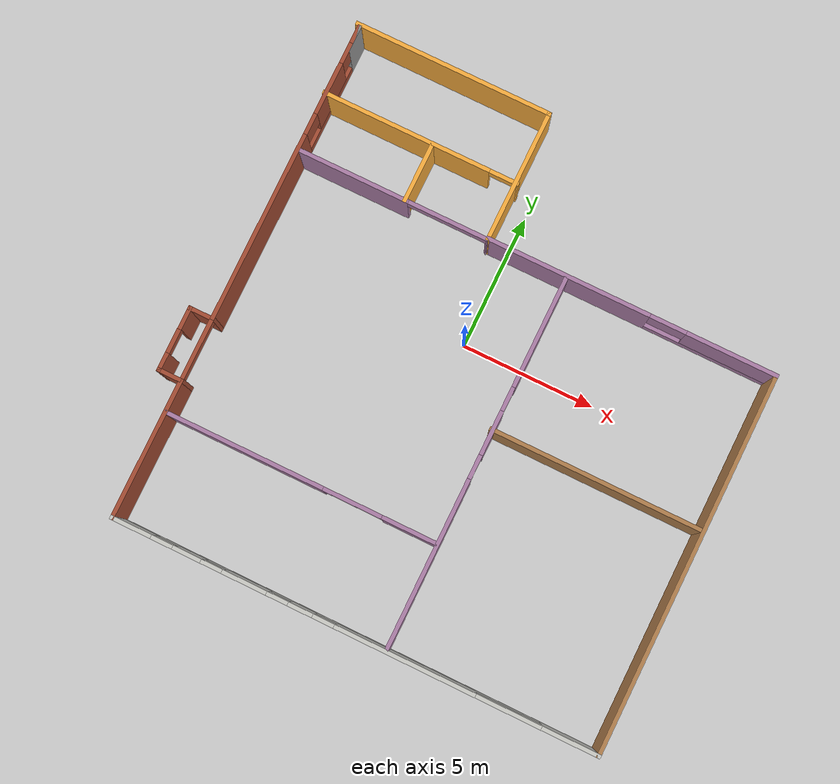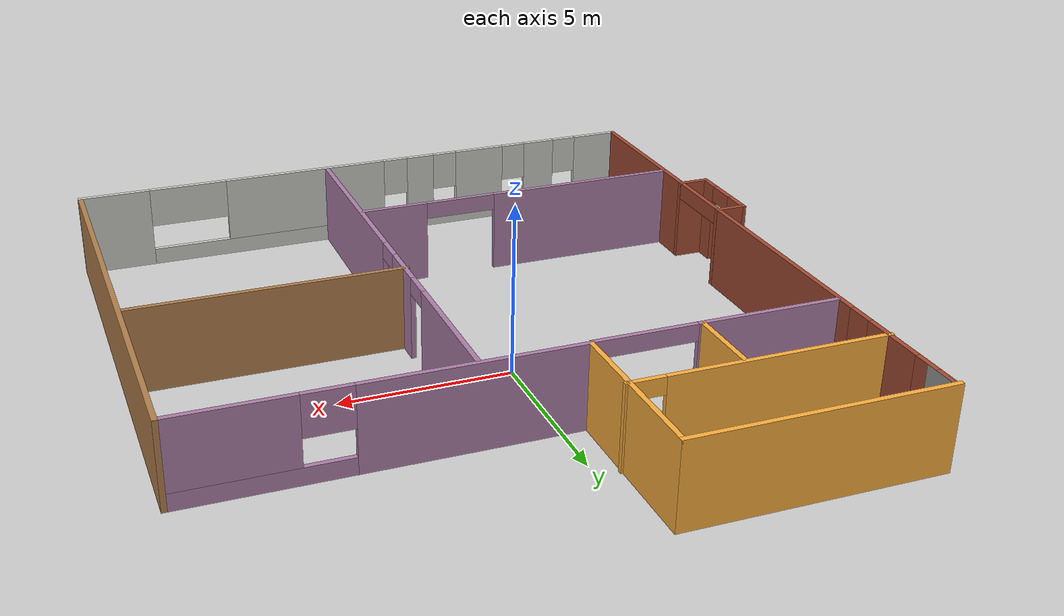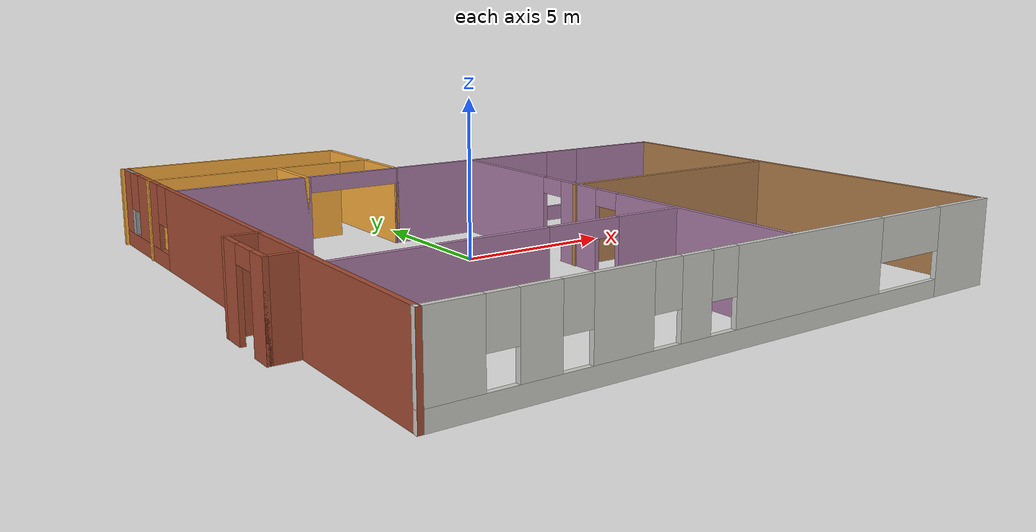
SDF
<?xml version='1.0'?>
<sdf version='1.6'>
  <model name='apartment-structure'>
    <pose frame=''>0.643733 -1.23785 0 0 -0 0</pose>
    <link name='Wall_14'>
      <collision name='Wall_14_Collision'>
        <geometry>
          <box>
            <size>7.5 0.15 2.5</size>
          </box>
        </geometry>
        <pose frame=''>0 0 1.25 0 -0 0</pose>
      </collision>
      <visual name='Wall_14_Visual'>
        <pose frame=''>0 0 1.25 0 -0 0</pose>
        <geometry>
          <box>
            <size>7.5 0.15 2.5</size>
          </box>
        </geometry>
        <material>
          <script>
            <uri>file://media/materials/scripts/gazebo.material</uri>
            <name>Gazebo/Grey</name>
          </script>
          <ambient>0.988235 0.686275 0.243137 1</ambient>
        </material>
        <meta>
          <layer>0</layer>
        </meta>
      </visual>
      <pose frame=''>-5.05241 9.475 0 0 -0 0</pose>
    </link>
    <link name='Wall_15'>
      <collision name='Wall_15_Collision'>
        <geometry>
          <box>
            <size>5 0.15 2.5</size>
          </box>
        </geometry>
        <pose frame=''>0 0 1.25 0 -0 0</pose>
      </collision>
      <visual name='Wall_15_Visual'>
        <pose frame=''>0 0 1.25 0 -0 0</pose>
        <geometry>
          <box>
            <size>5 0.15 2.5</size>
          </box>
        </geometry>
        <material>
          <script>
            <uri>file://media/materials/scripts/gazebo.material</uri>
            <name>Gazebo/Grey</name>
          </script>
          <ambient>0.988235 0.686275 0.243137 1</ambient>
        </material>
        <meta>
          <layer>0</layer>
        </meta>
      </visual>
      <pose frame=''>-1.37741 7.05 0 0 -0 -1.5708</pose>
    </link>
    <link name='Wall_16'>
      <pose frame=''>4.0476 4.625 0 0 -0 0</pose>
      <visual name='Wall_16_Visual_0'>
        <pose frame=''>-2.39955 0 1.25 0 -0 0</pose>
        <geometry>
          <box>
            <size>6.20089 0.15 2.5</size>
          </box>
        </geometry>
        <material>
          <script>
            <uri>file://media/materials/scripts/gazebo.material</uri>
            <name>Gazebo/Grey</name>
          </script>
          <ambient>0.678431 0.498039 0.658824 1</ambient>
        </material>
        <meta>
          <layer>0</layer>
        </meta>
      </visual>
      <collision name='Wall_16_Collision_0'>
        <geometry>
          <box>
            <size>6.20089 0.15 2.5</size>
          </box>
        </geometry>
        <pose frame=''>-2.39955 0 1.25 0 -0 0</pose>
      </collision>
      <visual name='Wall_16_Visual_1'>
        <pose frame=''>3.10045 0 0.25 0 -0 0</pose>
        <geometry>
          <box>
            <size>4.79911 0.15 0.5</size>
          </box>
        </geometry>
        <material>
          <script>
            <uri>file://media/materials/scripts/gazebo.material</uri>
            <name>Gazebo/Grey</name>
          </script>
          <ambient>0.678431 0.498039 0.658824 1</ambient>
        </material>
        <meta>
          <layer>0</layer>
        </meta>
      </visual>
      <collision name='Wall_16_Collision_1'>
        <geometry>
          <box>
            <size>4.79911 0.15 0.5</size>
          </box>
        </geometry>
        <pose frame=''>3.10045 0 0.25 0 -0 0</pose>
      </collision>
      <visual name='Wall_16_Visual_2'>
        <pose frame=''>3.77959 0 1.5 0 -0 0</pose>
        <geometry>
          <box>
            <size>3.44082 0.15 2</size>
          </box>
        </geometry>
        <material>
          <script>
            <uri>file://media/materials/scripts/gazebo.material</uri>
            <name>Gazebo/Grey</name>
          </script>
          <ambient>0.678431 0.498039 0.658824 1</ambient>
        </material>
        <meta>
          <layer>0</layer>
        </meta>
      </visual>
      <collision name='Wall_16_Collision_2'>
        <geometry>
          <box>
            <size>3.44082 0.15 2</size>
          </box>
        </geometry>
        <pose frame=''>3.77959 0 1.5 0 -0 0</pose>
      </collision>
      <visual name='Wall_16_Visual_3'>
        <pose frame=''>1.38003 0 1.9 0 -0 0</pose>
        <geometry>
          <box>
            <size>1.35829 0.15 1.2</size>
          </box>
        </geometry>
        <material>
          <script>
            <uri>file://media/materials/scripts/gazebo.material</uri>
            <name>Gazebo/Grey</name>
          </script>
          <ambient>0.678431 0.498039 0.658824 1</ambient>
        </material>
        <meta>
          <layer>0</layer>
        </meta>
      </visual>
      <collision name='Wall_16_Collision_3'>
        <geometry>
          <box>
            <size>1.35829 0.15 1.2</size>
          </box>
        </geometry>
        <pose frame=''>1.38003 0 1.9 0 -0 0</pose>
      </collision>
    </link>
    <link name='Wall_18'>
      <collision name='Wall_18_Collision'>
        <geometry>
          <box>
            <size>14.25 0.15 2.5</size>
          </box>
        </geometry>
        <pose frame=''>0 0 1.25 0 -0 0</pose>
      </collision>
      <visual name='Wall_18_Visual'>
        <pose frame=''>0 0 1.25 0 -0 0</pose>
        <geometry>
          <box>
            <size>14.25 0.15 2.5</size>
          </box>
        </geometry>
        <material>
          <script>
            <uri>file://media/materials/scripts/gazebo.material</uri>
            <name>Gazebo/Wood</name>
          </script>
          <ambient>1 1 1 1</ambient>
        </material>
        <meta>
          <layer>0</layer>
        </meta>
      </visual>
      <pose frame=''>9.47259 -2.425 0 0 -0 -1.5708</pose>
    </link>
    <link name='Wall_19'>
      <pose frame=''>0.422594 -9.475 0 0 -0 3.14159</pose>
      <visual name='Wall_19_Visual_0'>
        <pose frame=''>-8.03266 0 1.25 0 -0 0</pose>
        <geometry>
          <box>
            <size>2.18468 0.15 2.5</size>
          </box>
        </geometry>
        <material>
          <script>
            <uri>file://media/materials/scripts/gazebo.material</uri>
            <name>Gazebo/CeilingTiled</name>
          </script>
          <ambient>1 1 1 1</ambient>
        </material>
        <meta>
          <layer>0</layer>
        </meta>
      </visual>
      <collision name='Wall_19_Collision_0'>
        <geometry>
          <box>
            <size>2.18468 0.15 2.5</size>
          </box>
        </geometry>
        <pose frame=''>-8.03266 0 1.25 0 -0 0</pose>
      </collision>
      <visual name='Wall_19_Visual_1'>
        <pose frame=''>1.09234 0 0.25 0 -0 0</pose>
        <geometry>
          <box>
            <size>16.0653 0.15 0.5</size>
          </box>
        </geometry>
        <material>
          <script>
            <uri>file://media/materials/scripts/gazebo.material</uri>
            <name>Gazebo/CeilingTiled</name>
          </script>
          <ambient>1 1 1 1</ambient>
        </material>
        <meta>
          <layer>0</layer>
        </meta>
      </visual>
      <collision name='Wall_19_Collision_1'>
        <geometry>
          <box>
            <size>16.0653 0.15 0.5</size>
          </box>
        </geometry>
        <pose frame=''>1.09234 0 0.25 0 -0 0</pose>
      </collision>
      <visual name='Wall_19_Visual_2'>
        <pose frame=''>-1.88793 0 1.5 0 -0 0</pose>
        <geometry>
          <box>
            <size>5.24811 0.15 2</size>
          </box>
        </geometry>
        <material>
          <script>
            <uri>file://media/materials/scripts/gazebo.material</uri>
            <name>Gazebo/CeilingTiled</name>
          </script>
          <ambient>1 1 1 1</ambient>
        </material>
        <meta>
          <layer>0</layer>
        </meta>
      </visual>
      <collision name='Wall_19_Collision_2'>
        <geometry>
          <box>
            <size>5.24811 0.15 2</size>
          </box>
        </geometry>
        <pose frame=''>-1.88793 0 1.5 0 -0 0</pose>
      </collision>
      <visual name='Wall_19_Visual_3'>
        <pose frame=''>1.99682 0 1.5 0 -0 0</pose>
        <geometry>
          <box>
            <size>0.921385 0.15 2</size>
          </box>
        </geometry>
        <material>
          <script>
            <uri>file://media/materials/scripts/gazebo.material</uri>
            <name>Gazebo/CeilingTiled</name>
          </script>
          <ambient>1 1 1 1</ambient>
        </material>
        <meta>
          <layer>0</layer>
        </meta>
      </visual>
      <collision name='Wall_19_Collision_3'>
        <geometry>
          <box>
            <size>0.921385 0.15 2</size>
          </box>
        </geometry>
        <pose frame=''>1.99682 0 1.5 0 -0 0</pose>
      </collision>
      <visual name='Wall_19_Visual_4'>
        <pose frame=''>4.09039 0 1.5 0 -0 0</pose>
        <geometry>
          <box>
            <size>1.66577 0.15 2</size>
          </box>
        </geometry>
        <material>
          <script>
            <uri>file://media/materials/scripts/gazebo.material</uri>
            <name>Gazebo/CeilingTiled</name>
          </script>
          <ambient>1 1 1 1</ambient>
        </material>
        <meta>
          <layer>0</layer>
        </meta>
      </visual>
      <collision name='Wall_19_Collision_4'>
        <geometry>
          <box>
            <size>1.66577 0.15 2</size>
          </box>
        </geometry>
        <pose frame=''>4.09039 0 1.5 0 -0 0</pose>
      </collision>
      <visual name='Wall_19_Visual_5'>
        <pose frame=''>6.25375 0 1.5 0 -0 0</pose>
        <geometry>
          <box>
            <size>1.06096 0.15 2</size>
          </box>
        </geometry>
        <material>
          <script>
            <uri>file://media/materials/scripts/gazebo.material</uri>
            <name>Gazebo/CeilingTiled</name>
          </script>
          <ambient>1 1 1 1</ambient>
        </material>
        <meta>
          <layer>0</layer>
        </meta>
      </visual>
      <collision name='Wall_19_Collision_5'>
        <geometry>
          <box>
            <size>1.06096 0.15 2</size>
          </box>
        </geometry>
        <pose frame=''>6.25375 0 1.5 0 -0 0</pose>
      </collision>
      <visual name='Wall_19_Visual_6'>
        <pose frame=''>8.35462 0 1.5 0 -0 0</pose>
        <geometry>
          <box>
            <size>1.54077 0.15 2</size>
          </box>
        </geometry>
        <material>
          <script>
            <uri>file://media/materials/scripts/gazebo.material</uri>
            <name>Gazebo/CeilingTiled</name>
          </script>
          <ambient>1 1 1 1</ambient>
        </material>
        <meta>
          <layer>0</layer>
        </meta>
      </visual>
      <collision name='Wall_19_Collision_6'>
        <geometry>
          <box>
            <size>1.54077 0.15 2</size>
          </box>
        </geometry>
        <pose frame=''>8.35462 0 1.5 0 -0 0</pose>
      </collision>
      <visual name='Wall_19_Visual_7'>
        <pose frame=''>-5.72615 0 1.9 0 -0 0</pose>
        <geometry>
          <box>
            <size>2.42834 0.15 1.2</size>
          </box>
        </geometry>
        <material>
          <script>
            <uri>file://media/materials/scripts/gazebo.material</uri>
            <name>Gazebo/CeilingTiled</name>
          </script>
          <ambient>1 1 1 1</ambient>
        </material>
        <meta>
          <layer>0</layer>
        </meta>
      </visual>
      <collision name='Wall_19_Collision_7'>
        <geometry>
          <box>
            <size>2.42834 0.15 1.2</size>
          </box>
        </geometry>
        <pose frame=''>-5.72615 0 1.9 0 -0 0</pose>
      </collision>
      <visual name='Wall_19_Visual_8'>
        <pose frame=''>1.13612 0 1.9 0 -0 0</pose>
        <geometry>
          <box>
            <size>0.8 0.15 1.2</size>
          </box>
        </geometry>
        <material>
          <script>
            <uri>file://media/materials/scripts/gazebo.material</uri>
            <name>Gazebo/CeilingTiled</name>
          </script>
          <ambient>1 1 1 1</ambient>
        </material>
        <meta>
          <layer>0</layer>
        </meta>
      </visual>
      <collision name='Wall_19_Collision_8'>
        <geometry>
          <box>
            <size>0.8 0.15 1.2</size>
          </box>
        </geometry>
        <pose frame=''>1.13612 0 1.9 0 -0 0</pose>
      </collision>
      <visual name='Wall_19_Visual_9'>
        <pose frame=''>2.85751 0 1.9 0 -0 0</pose>
        <geometry>
          <box>
            <size>0.8 0.15 1.2</size>
          </box>
        </geometry>
        <material>
          <script>
            <uri>file://media/materials/scripts/gazebo.material</uri>
            <name>Gazebo/CeilingTiled</name>
          </script>
          <ambient>1 1 1 1</ambient>
        </material>
        <meta>
          <layer>0</layer>
        </meta>
      </visual>
      <collision name='Wall_19_Collision_9'>
        <geometry>
          <box>
            <size>0.8 0.15 1.2</size>
          </box>
        </geometry>
        <pose frame=''>2.85751 0 1.9 0 -0 0</pose>
      </collision>
      <visual name='Wall_19_Visual_10'>
        <pose frame=''>5.32328 0 1.9 0 -0 0</pose>
        <geometry>
          <box>
            <size>0.8 0.15 1.2</size>
          </box>
        </geometry>
        <material>
          <script>
            <uri>file://media/materials/scripts/gazebo.material</uri>
            <name>Gazebo/CeilingTiled</name>
          </script>
          <ambient>1 1 1 1</ambient>
        </material>
        <meta>
          <layer>0</layer>
        </meta>
      </visual>
      <collision name='Wall_19_Collision_10'>
        <geometry>
          <box>
            <size>0.8 0.15 1.2</size>
          </box>
        </geometry>
        <pose frame=''>5.32328 0 1.9 0 -0 0</pose>
      </collision>
      <visual name='Wall_19_Visual_11'>
        <pose frame=''>7.18423 0 1.9 0 -0 0</pose>
        <geometry>
          <box>
            <size>0.8 0.15 1.2</size>
          </box>
        </geometry>
        <material>
          <script>
            <uri>file://media/materials/scripts/gazebo.material</uri>
            <name>Gazebo/CeilingTiled</name>
          </script>
          <ambient>1 1 1 1</ambient>
        </material>
        <meta>
          <layer>0</layer>
        </meta>
      </visual>
      <collision name='Wall_19_Collision_11'>
        <geometry>
          <box>
            <size>0.8 0.15 1.2</size>
          </box>
        </geometry>
        <pose frame=''>7.18423 0 1.9 0 -0 0</pose>
      </collision>
    </link>
    <link name='Wall_20'>
      <pose frame=''>-8.62741 -0.049999 0 0 -0 1.5708</pose>
      <visual name='Wall_20_Visual_0'>
        <pose frame=''>-6.85379 0 1.25 0 -0 0</pose>
        <geometry>
          <box>
            <size>5.29242 0.15 2.5</size>
          </box>
        </geometry>
        <material>
          <script>
            <uri>file://media/materials/scripts/gazebo.material</uri>
            <name>Gazebo/Bricks</name>
          </script>
          <ambient>0.678431 0.498039 0.658824 1</ambient>
        </material>
        <meta>
          <layer>0</layer>
        </meta>
      </visual>
      <collision name='Wall_20_Collision_0'>
        <geometry>
          <box>
            <size>5.29242 0.15 2.5</size>
          </box>
        </geometry>
        <pose frame=''>-6.85379 0 1.25 0 -0 0</pose>
      </collision>
      <visual name='Wall_20_Visual_1'>
        <pose frame=''>1.6293 0 1.25 0 -0 0</pose>
        <geometry>
          <box>
            <size>7.17537 0.15 2.5</size>
          </box>
        </geometry>
        <material>
          <script>
            <uri>file://media/materials/scripts/gazebo.material</uri>
            <name>Gazebo/Bricks</name>
          </script>
          <ambient>0.678431 0.498039 0.658824 1</ambient>
        </material>
        <meta>
          <layer>0</layer>
        </meta>
      </visual>
      <collision name='Wall_20_Collision_1'>
        <geometry>
          <box>
            <size>7.17537 0.15 2.5</size>
          </box>
        </geometry>
        <pose frame=''>1.6293 0 1.25 0 -0 0</pose>
      </collision>
      <visual name='Wall_20_Visual_2'>
        <pose frame=''>7.3585 0 0.25 0 -0 0</pose>
        <geometry>
          <box>
            <size>4.28301 0.15 0.5</size>
          </box>
        </geometry>
        <material>
          <script>
            <uri>file://media/materials/scripts/gazebo.material</uri>
            <name>Gazebo/Bricks</name>
          </script>
          <ambient>0.678431 0.498039 0.658824 1</ambient>
        </material>
        <meta>
          <layer>0</layer>
        </meta>
      </visual>
      <collision name='Wall_20_Collision_2'>
        <geometry>
          <box>
            <size>4.28301 0.15 0.5</size>
          </box>
        </geometry>
        <pose frame=''>7.3585 0 0.25 0 -0 0</pose>
      </collision>
      <visual name='Wall_20_Visual_3'>
        <pose frame=''>7.01271 0 1.5 0 -0 0</pose>
        <geometry>
          <box>
            <size>1.99144 0.15 2</size>
          </box>
        </geometry>
        <material>
          <script>
            <uri>file://media/materials/scripts/gazebo.material</uri>
            <name>Gazebo/Bricks</name>
          </script>
          <ambient>0.678431 0.498039 0.658824 1</ambient>
        </material>
        <meta>
          <layer>0</layer>
        </meta>
      </visual>
      <collision name='Wall_20_Collision_3'>
        <geometry>
          <box>
            <size>1.99144 0.15 2</size>
          </box>
        </geometry>
        <pose frame=''>7.01271 0 1.5 0 -0 0</pose>
      </collision>
      <visual name='Wall_20_Visual_4'>
        <pose frame=''>9.15421 0 1.5 0 -0 0</pose>
        <geometry>
          <box>
            <size>0.691574 0.15 2</size>
          </box>
        </geometry>
        <material>
          <script>
            <uri>file://media/materials/scripts/gazebo.material</uri>
            <name>Gazebo/Bricks</name>
          </script>
          <ambient>0.678431 0.498039 0.658824 1</ambient>
        </material>
        <meta>
          <layer>0</layer>
        </meta>
      </visual>
      <collision name='Wall_20_Collision_4'>
        <geometry>
          <box>
            <size>0.691574 0.15 2</size>
          </box>
        </geometry>
        <pose frame=''>9.15421 0 1.5 0 -0 0</pose>
      </collision>
      <visual name='Wall_20_Visual_5'>
        <pose frame=''>5.61699 0 1.9 0 -0 0</pose>
        <geometry>
          <box>
            <size>0.8 0.15 1.2</size>
          </box>
        </geometry>
        <material>
          <script>
            <uri>file://media/materials/scripts/gazebo.material</uri>
            <name>Gazebo/Bricks</name>
          </script>
          <ambient>0.678431 0.498039 0.658824 1</ambient>
        </material>
        <meta>
          <layer>0</layer>
        </meta>
      </visual>
      <collision name='Wall_20_Collision_5'>
        <geometry>
          <box>
            <size>0.8 0.15 1.2</size>
          </box>
        </geometry>
        <pose frame=''>5.61699 0 1.9 0 -0 0</pose>
      </collision>
      <visual name='Wall_20_Visual_6'>
        <pose frame=''>8.40843 0 1.9 0 -0 0</pose>
        <geometry>
          <box>
            <size>0.8 0.15 1.2</size>
          </box>
        </geometry>
        <material>
          <script>
            <uri>file://media/materials/scripts/gazebo.material</uri>
            <name>Gazebo/Bricks</name>
          </script>
          <ambient>0.678431 0.498039 0.658824 1</ambient>
        </material>
        <meta>
          <layer>0</layer>
        </meta>
      </visual>
      <collision name='Wall_20_Collision_6'>
        <geometry>
          <box>
            <size>0.8 0.15 1.2</size>
          </box>
        </geometry>
        <pose frame=''>8.40843 0 1.9 0 -0 0</pose>
      </collision>
      <visual name='Wall_20_Visual_7'>
        <pose frame=''>-3.08298 0 2.25 0 -0 0</pose>
        <geometry>
          <box>
            <size>2.24919 0.15 0.5</size>
          </box>
        </geometry>
        <material>
          <script>
            <uri>file://media/materials/scripts/gazebo.material</uri>
            <name>Gazebo/Bricks</name>
          </script>
          <ambient>0.678431 0.498039 0.658824 1</ambient>
        </material>
        <meta>
          <layer>0</layer>
        </meta>
      </visual>
      <collision name='Wall_20_Collision_7'>
        <geometry>
          <box>
            <size>2.24919 0.15 0.5</size>
          </box>
        </geometry>
        <pose frame=''>-3.08298 0 2.25 0 -0 0</pose>
      </collision>
    </link>
    <link name='Wall_21'>
      <collision name='Wall_21_Collision'>
        <geometry>
          <box>
            <size>1 0.15 2.5</size>
          </box>
        </geometry>
        <pose frame=''>0 0 1.25 0 -0 0</pose>
      </collision>
      <visual name='Wall_21_Visual'>
        <pose frame=''>0 0 1.25 0 -0 0</pose>
        <geometry>
          <box>
            <size>1 0.15 2.5</size>
          </box>
        </geometry>
        <material>
          <script>
            <uri>file://media/materials/scripts/gazebo.material</uri>
            <name>Gazebo/Grey</name>
          </script>
          <ambient>1 1 1 1</ambient>
        </material>
        <meta>
          <layer>0</layer>
        </meta>
      </visual>
      <pose frame=''>-8.62741 8.95 0 0 -0 -1.5708</pose>
    </link>
    <link name='Wall_23'>
      <pose frame=''>-4.99412 6.77661 0 0 -0 0</pose>
      <visual name='Wall_23_Visual_0'>
        <pose frame=''>-0.552885 0 1.25 0 -0 0</pose>
        <geometry>
          <box>
            <size>6.39423 0.15 2.5</size>
          </box>
        </geometry>
        <material>
          <script>
            <uri>file://media/materials/scripts/gazebo.material</uri>
            <name>Gazebo/Grey</name>
          </script>
          <ambient>0.988235 0.686275 0.243137 1</ambient>
        </material>
        <meta>
          <layer>0</layer>
        </meta>
      </visual>
      <collision name='Wall_23_Collision_0'>
        <geometry>
          <box>
            <size>6.39423 0.15 2.5</size>
          </box>
        </geometry>
        <pose frame=''>-0.552885 0 1.25 0 -0 0</pose>
      </collision>
      <visual name='Wall_23_Visual_1'>
        <pose frame=''>3.69364 0 1.25 0 -0 0</pose>
        <geometry>
          <box>
            <size>0.112723 0.15 2.5</size>
          </box>
        </geometry>
        <material>
          <script>
            <uri>file://media/materials/scripts/gazebo.material</uri>
            <name>Gazebo/Grey</name>
          </script>
          <ambient>0.988235 0.686275 0.243137 1</ambient>
        </material>
        <meta>
          <layer>0</layer>
        </meta>
      </visual>
      <collision name='Wall_23_Collision_1'>
        <geometry>
          <box>
            <size>0.112723 0.15 2.5</size>
          </box>
        </geometry>
        <pose frame=''>3.69364 0 1.25 0 -0 0</pose>
      </collision>
      <visual name='Wall_23_Visual_2'>
        <pose frame=''>3.14075 0 2.25 0 -0 0</pose>
        <geometry>
          <box>
            <size>0.993048 0.15 0.5</size>
          </box>
        </geometry>
        <material>
          <script>
            <uri>file://media/materials/scripts/gazebo.material</uri>
            <name>Gazebo/Grey</name>
          </script>
          <ambient>0.988235 0.686275 0.243137 1</ambient>
        </material>
        <meta>
          <layer>0</layer>
        </meta>
      </visual>
      <collision name='Wall_23_Collision_2'>
        <geometry>
          <box>
            <size>0.993048 0.15 0.5</size>
          </box>
        </geometry>
        <pose frame=''>3.14075 0 2.25 0 -0 0</pose>
      </collision>
    </link>
    <link name='Wall_26'>
      <pose frame=''>-4.98544 4.58357 0 0 -0 3.14159</pose>
      <visual name='Wall_26_Visual_0'>
        <pose frame=''>-3.60354 0 1.25 0 -0 0</pose>
        <geometry>
          <box>
            <size>0.042923 0.15 2.5</size>
          </box>
        </geometry>
        <material>
          <script>
            <uri>file://media/materials/scripts/gazebo.material</uri>
            <name>Gazebo/Grey</name>
          </script>
          <ambient>0.678431 0.498039 0.658824 1</ambient>
        </material>
        <meta>
          <layer>0</layer>
        </meta>
      </visual>
      <collision name='Wall_26_Collision_0'>
        <geometry>
          <box>
            <size>0.042923 0.15 2.5</size>
          </box>
        </geometry>
        <pose frame=''>-3.60354 0 1.25 0 -0 0</pose>
      </collision>
      <visual name='Wall_26_Visual_1'>
        <pose frame=''>1.51825 0 1.25 0 -0 0</pose>
        <geometry>
          <box>
            <size>4.2135 0.15 2.5</size>
          </box>
        </geometry>
        <material>
          <script>
            <uri>file://media/materials/scripts/gazebo.material</uri>
            <name>Gazebo/Grey</name>
          </script>
          <ambient>0.678431 0.498039 0.658824 1</ambient>
        </material>
        <meta>
          <layer>0</layer>
        </meta>
      </visual>
      <collision name='Wall_26_Collision_1'>
        <geometry>
          <box>
            <size>4.2135 0.15 2.5</size>
          </box>
        </geometry>
        <pose frame=''>1.51825 0 1.25 0 -0 0</pose>
      </collision>
      <visual name='Wall_26_Visual_2'>
        <pose frame=''>-2.08529 0 2.25 0 -0 0</pose>
        <geometry>
          <box>
            <size>2.99358 0.15 0.5</size>
          </box>
        </geometry>
        <material>
          <script>
            <uri>file://media/materials/scripts/gazebo.material</uri>
            <name>Gazebo/Grey</name>
          </script>
          <ambient>0.678431 0.498039 0.658824 1</ambient>
        </material>
        <meta>
          <layer>0</layer>
        </meta>
      </visual>
      <collision name='Wall_26_Collision_2'>
        <geometry>
          <box>
            <size>2.99358 0.15 0.5</size>
          </box>
        </geometry>
        <pose frame=''>-2.08529 0 2.25 0 -0 0</pose>
      </collision>
    </link>
    <link name='Wall_28'>
      <collision name='Wall_28_Collision'>
        <geometry>
          <box>
            <size>2.25 0.15 2.5</size>
          </box>
        </geometry>
        <pose frame=''>0 0 1.25 0 -0 0</pose>
      </collision>
      <visual name='Wall_28_Visual'>
        <pose frame=''>0 0 1.25 0 -0 0</pose>
        <geometry>
          <box>
            <size>2.25 0.15 2.5</size>
          </box>
        </geometry>
        <material>
          <script>
            <uri>file://media/materials/scripts/gazebo.material</uri>
            <name>Gazebo/Grey</name>
          </script>
          <ambient>0.988235 0.686275 0.243137 1</ambient>
        </material>
        <meta>
          <layer>0</layer>
        </meta>
      </visual>
      <pose frame=''>-4.52849 5.63357 0 0 -0 -1.5708</pose>
    </link>
    <link name='Wall_30'>
      <pose frame=''>1.61267 -2.42806 0 0 -0 -1.5708</pose>
      <visual name='Wall_30_Visual_0'>
        <pose frame=''>-4.90783 0 1.25 0 -0 0</pose>
        <geometry>
          <box>
            <size>4.18434 0.15 2.5</size>
          </box>
        </geometry>
        <material>
          <script>
            <uri>file://media/materials/scripts/gazebo.material</uri>
            <name>Gazebo/Grey</name>
          </script>
          <ambient>0.678431 0.498039 0.658824 1</ambient>
        </material>
        <meta>
          <layer>0</layer>
        </meta>
      </visual>
      <collision name='Wall_30_Collision_0'>
        <geometry>
          <box>
            <size>4.18434 0.15 2.5</size>
          </box>
        </geometry>
        <pose frame=''>-4.90783 0 1.25 0 -0 0</pose>
      </collision>
      <visual name='Wall_30_Visual_1'>
        <pose frame=''>-1.08625 0 1.25 0 -0 0</pose>
        <geometry>
          <box>
            <size>1.65881 0.15 2.5</size>
          </box>
        </geometry>
        <material>
          <script>
            <uri>file://media/materials/scripts/gazebo.material</uri>
            <name>Gazebo/Grey</name>
          </script>
          <ambient>0.678431 0.498039 0.658824 1</ambient>
        </material>
        <meta>
          <layer>0</layer>
        </meta>
      </visual>
      <collision name='Wall_30_Collision_1'>
        <geometry>
          <box>
            <size>1.65881 0.15 2.5</size>
          </box>
        </geometry>
        <pose frame=''>-1.08625 0 1.25 0 -0 0</pose>
      </collision>
      <visual name='Wall_30_Visual_2'>
        <pose frame=''>3.82158 0 1.25 0 -0 0</pose>
        <geometry>
          <box>
            <size>6.35684 0.15 2.5</size>
          </box>
        </geometry>
        <material>
          <script>
            <uri>file://media/materials/scripts/gazebo.material</uri>
            <name>Gazebo/Grey</name>
          </script>
          <ambient>0.678431 0.498039 0.658824 1</ambient>
        </material>
        <meta>
          <layer>0</layer>
        </meta>
      </visual>
      <collision name='Wall_30_Collision_2'>
        <geometry>
          <box>
            <size>6.35684 0.15 2.5</size>
          </box>
        </geometry>
        <pose frame=''>3.82158 0 1.25 0 -0 0</pose>
      </collision>
      <visual name='Wall_30_Visual_3'>
        <pose frame=''>-2.36566 0 2.25 0 -0 0</pose>
        <geometry>
          <box>
            <size>0.9 0.15 0.5</size>
          </box>
        </geometry>
        <material>
          <script>
            <uri>file://media/materials/scripts/gazebo.material</uri>
            <name>Gazebo/Grey</name>
          </script>
          <ambient>0.678431 0.498039 0.658824 1</ambient>
        </material>
        <meta>
          <layer>0</layer>
        </meta>
      </visual>
      <collision name='Wall_30_Collision_3'>
        <geometry>
          <box>
            <size>0.9 0.15 0.5</size>
          </box>
        </geometry>
        <pose frame=''>-2.36566 0 2.25 0 -0 0</pose>
      </collision>
      <visual name='Wall_30_Visual_4'>
        <pose frame=''>0.193159 0 2.25 0 -0 0</pose>
        <geometry>
          <box>
            <size>0.9 0.15 0.5</size>
          </box>
        </geometry>
        <material>
          <script>
            <uri>file://media/materials/scripts/gazebo.material</uri>
            <name>Gazebo/Grey</name>
          </script>
          <ambient>0.678431 0.498039 0.658824 1</ambient>
        </material>
        <meta>
          <layer>0</layer>
        </meta>
      </visual>
      <collision name='Wall_30_Collision_4'>
        <geometry>
          <box>
            <size>0.9 0.15 0.5</size>
          </box>
        </geometry>
        <pose frame=''>0.193159 0 2.25 0 -0 0</pose>
      </collision>
    </link>
    <link name='Wall_32'>
      <pose frame=''>-3.52607 -5.5057 0 0 -0 0</pose>
      <visual name='Wall_32_Visual_0'>
        <pose frame=''>-2.13724 0 1.25 0 -0 0</pose>
        <geometry>
          <box>
            <size>5.97551 0.15 2.5</size>
          </box>
        </geometry>
        <material>
          <script>
            <uri>file://media/materials/scripts/gazebo.material</uri>
            <name>Gazebo/Grey</name>
          </script>
          <ambient>0.678431 0.498039 0.658824 1</ambient>
        </material>
        <meta>
          <layer>0</layer>
        </meta>
      </visual>
      <collision name='Wall_32_Collision_0'>
        <geometry>
          <box>
            <size>5.97551 0.15 2.5</size>
          </box>
        </geometry>
        <pose frame=''>-2.13724 0 1.25 0 -0 0</pose>
      </collision>
      <visual name='Wall_32_Visual_1'>
        <pose frame=''>4.08909 0 1.25 0 -0 0</pose>
        <geometry>
          <box>
            <size>2.07182 0.15 2.5</size>
          </box>
        </geometry>
        <material>
          <script>
            <uri>file://media/materials/scripts/gazebo.material</uri>
            <name>Gazebo/Grey</name>
          </script>
          <ambient>0.678431 0.498039 0.658824 1</ambient>
        </material>
        <meta>
          <layer>0</layer>
        </meta>
      </visual>
      <collision name='Wall_32_Collision_1'>
        <geometry>
          <box>
            <size>2.07182 0.15 2.5</size>
          </box>
        </geometry>
        <pose frame=''>4.08909 0 1.25 0 -0 0</pose>
      </collision>
      <visual name='Wall_32_Visual_2'>
        <pose frame=''>1.95185 0 2.25 0 -0 0</pose>
        <geometry>
          <box>
            <size>2.20267 0.15 0.5</size>
          </box>
        </geometry>
        <material>
          <script>
            <uri>file://media/materials/scripts/gazebo.material</uri>
            <name>Gazebo/Grey</name>
          </script>
          <ambient>0.678431 0.498039 0.658824 1</ambient>
        </material>
        <meta>
          <layer>0</layer>
        </meta>
      </visual>
      <collision name='Wall_32_Collision_2'>
        <geometry>
          <box>
            <size>2.20267 0.15 0.5</size>
          </box>
        </geometry>
        <pose frame=''>1.95185 0 2.25 0 -0 0</pose>
      </collision>
    </link>
    <link name='Wall_34'>
      <collision name='Wall_34_Collision'>
        <geometry>
          <box>
            <size>8 0.15 2.5</size>
          </box>
        </geometry>
        <pose frame=''>0 0 1.25 0 -0 0</pose>
      </collision>
      <visual name='Wall_34_Visual'>
        <pose frame=''>0 0 1.25 0 -0 0</pose>
        <geometry>
          <box>
            <size>8 0.15 2.5</size>
          </box>
        </geometry>
        <material>
          <script>
            <uri>file://media/materials/scripts/gazebo.material</uri>
            <name>Gazebo/Wood</name>
          </script>
          <ambient>1 1 1 1</ambient>
        </material>
        <meta>
          <layer>0</layer>
        </meta>
      </visual>
      <pose frame=''>5.49114 -1.2255 0 0 -0 0</pose>
    </link>
    <link name='Wall_36'>
      <collision name='Wall_36_Collision'>
        <geometry>
          <box>
            <size>1 0.15 2.5</size>
          </box>
        </geometry>
        <pose frame=''>0 0 1.25 0 -0 0</pose>
      </collision>
      <visual name='Wall_36_Visual'>
        <pose frame=''>0 0 1.25 0 -0 0</pose>
        <geometry>
          <box>
            <size>1 0.15 2.5</size>
          </box>
        </geometry>
        <material>
          <script>
            <uri>file://media/materials/scripts/gazebo.material</uri>
            <name>Gazebo/Bricks</name>
          </script>
          <ambient>1 1 1 1</ambient>
        </material>
        <meta>
          <layer>0</layer>
        </meta>
      </visual>
      <pose frame=''>-9.04759 -1.96988 0 0 -0 3.14159</pose>
    </link>
    <link name='Wall_37'>
      <pose frame=''>-9.47259 -3.14488 0 0 -0 -1.5708</pose>
      <visual name='Wall_37_Visual_0'>
        <pose frame=''>-0.809427 0 1.25 0 -0 0</pose>
        <geometry>
          <box>
            <size>0.881146 0.15 2.5</size>
          </box>
        </geometry>
        <material>
          <script>
            <uri>file://media/materials/scripts/gazebo.material</uri>
            <name>Gazebo/Bricks</name>
          </script>
          <ambient>1 1 1 1</ambient>
        </material>
        <meta>
          <layer>0</layer>
        </meta>
      </visual>
      <collision name='Wall_37_Collision_0'>
        <geometry>
          <box>
            <size>0.881146 0.15 2.5</size>
          </box>
        </geometry>
        <pose frame=''>-0.809427 0 1.25 0 -0 0</pose>
      </collision>
      <visual name='Wall_37_Visual_1'>
        <pose frame=''>0.890573 0 1.25 0 -0 0</pose>
        <geometry>
          <box>
            <size>0.718854 0.15 2.5</size>
          </box>
        </geometry>
        <material>
          <script>
            <uri>file://media/materials/scripts/gazebo.material</uri>
            <name>Gazebo/Bricks</name>
          </script>
          <ambient>1 1 1 1</ambient>
        </material>
        <meta>
          <layer>0</layer>
        </meta>
      </visual>
      <collision name='Wall_37_Collision_1'>
        <geometry>
          <box>
            <size>0.718854 0.15 2.5</size>
          </box>
        </geometry>
        <pose frame=''>0.890573 0 1.25 0 -0 0</pose>
      </collision>
      <visual name='Wall_37_Visual_2'>
        <pose frame=''>0.081146 0 2.25 0 -0 0</pose>
        <geometry>
          <box>
            <size>0.9 0.15 0.5</size>
          </box>
        </geometry>
        <material>
          <script>
            <uri>file://media/materials/scripts/gazebo.material</uri>
            <name>Gazebo/Bricks</name>
          </script>
          <ambient>1 1 1 1</ambient>
        </material>
        <meta>
          <layer>0</layer>
        </meta>
      </visual>
      <collision name='Wall_37_Collision_2'>
        <geometry>
          <box>
            <size>0.9 0.15 0.5</size>
          </box>
        </geometry>
        <pose frame=''>0.081146 0 2.25 0 -0 0</pose>
      </collision>
    </link>
    <link name='Wall_38'>
      <collision name='Wall_38_Collision'>
        <geometry>
          <box>
            <size>1 0.15 2.5</size>
          </box>
        </geometry>
        <pose frame=''>0 0 1.25 0 -0 0</pose>
      </collision>
      <visual name='Wall_38_Visual'>
        <pose frame=''>0 0 1.25 0 -0 0</pose>
        <geometry>
          <box>
            <size>1 0.15 2.5</size>
          </box>
        </geometry>
        <material>
          <script>
            <uri>file://media/materials/scripts/gazebo.material</uri>
            <name>Gazebo/Bricks</name>
          </script>
          <ambient>1 1 1 1</ambient>
        </material>
        <meta>
          <layer>0</layer>
        </meta>
      </visual>
      <pose frame=''>-9.04759 -4.31988 0 0 -0 0</pose>
    </link>
    <static>1</static>
  </model>
</sdf>
